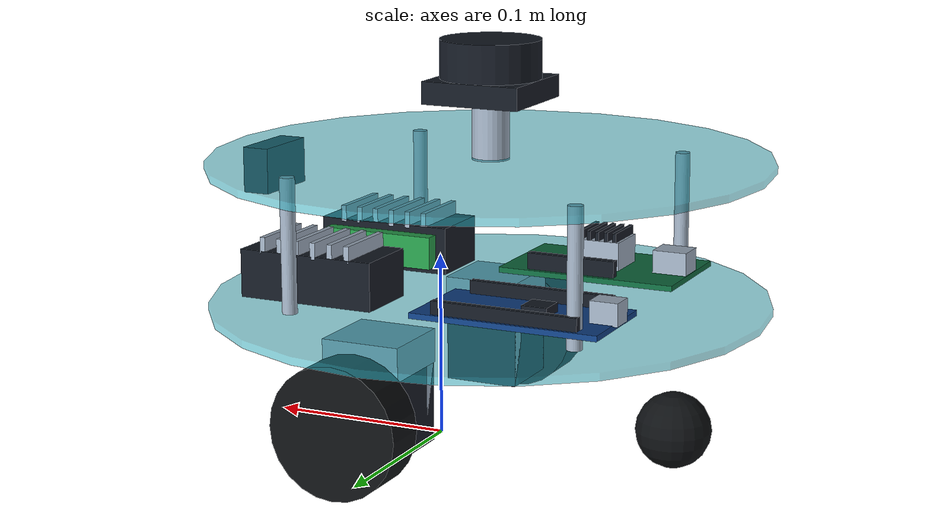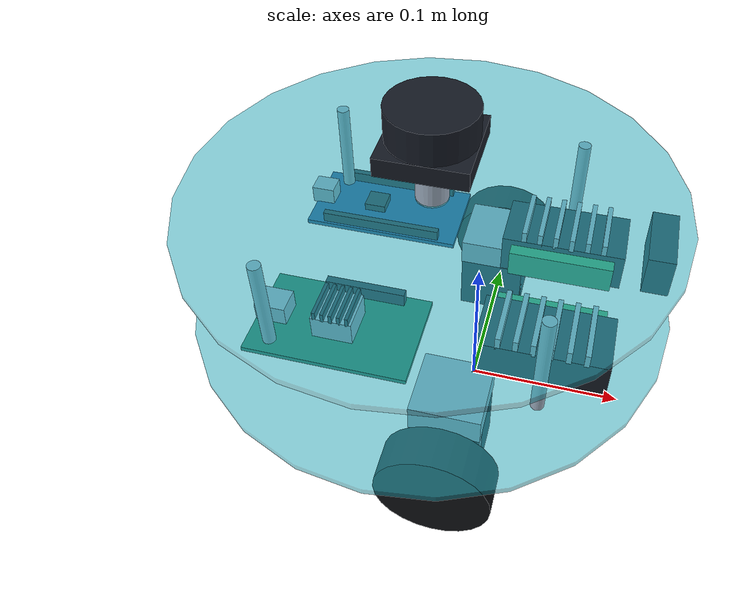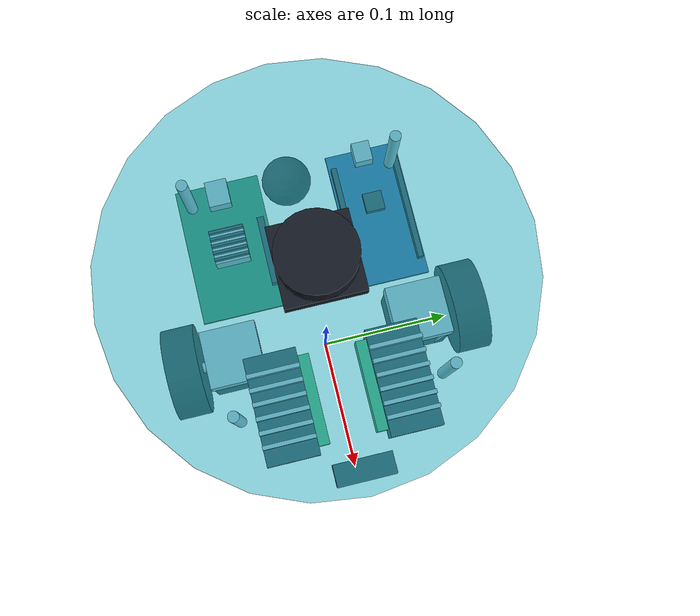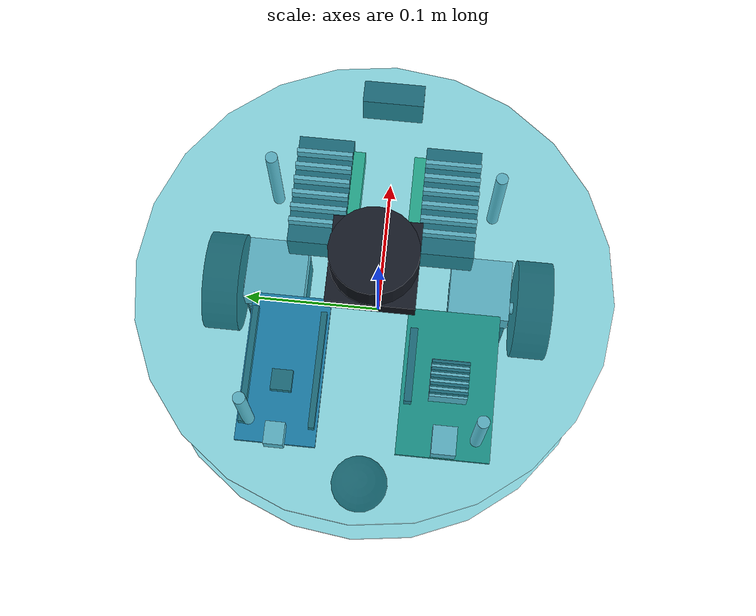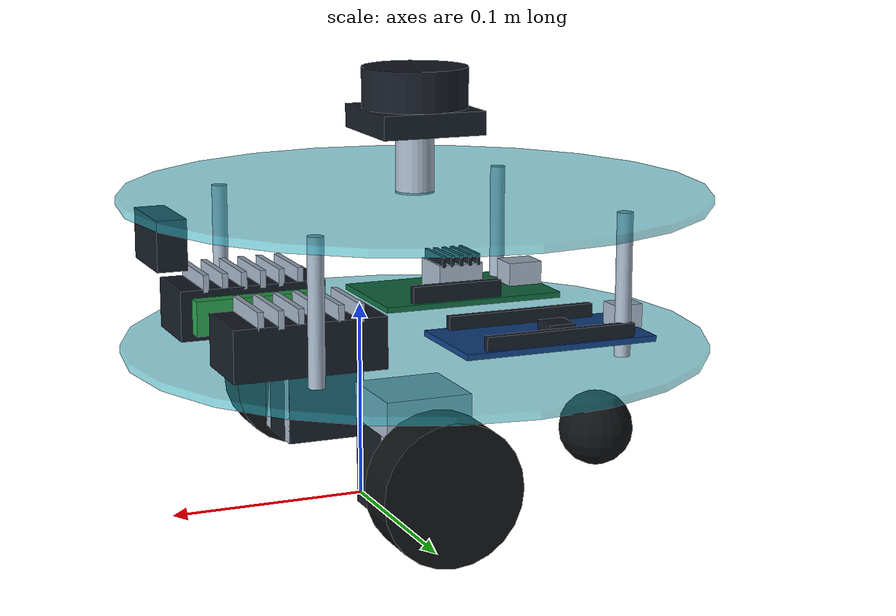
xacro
<robot xmlns:xacro="http://www.ros.org/wiki/xacro" name="vacuum">
  <xacro:arg name="controllers_file" default="$(find vacuum_sim)/config/controllers.yaml" />
  <xacro:arg name="camera_width" default="320" />
  <xacro:arg name="camera_height" default="240" />
  <xacro:arg name="camera_rate" default="60" />
  <xacro:property name="wheel_radius" value="0.035" />
  <xacro:property name="wheel_separation" value="0.22" />
  <xacro:property name="wheel_width" value="0.025" />
  <xacro:property name="body_x" value="0.30" />
  <xacro:property name="body_y" value="0.25" />
  <xacro:property name="body_z" value="0.08" />
  <xacro:property name="body_mass" value="3.0" />
  <material name="acrylic">
    <color rgba=".17 .70 .77 .55" />
  </material>
  <material name="rubber">
    <color rgba=".055 .065 .075 1" />
  </material>
  <material name="sensor">
    <color rgba=".08 .10 .14 1" />
  </material>
  <link name="base_footprint" />
  <joint name="base_joint" type="fixed">
    <parent link="base_footprint" />
    <child link="base_link" />
    <origin xyz="-0.03 0 0.116" />
  </joint>
  <link name="base_link">
    <inertial>
      <mass value="${body_mass}" />
      <inertia ixx="${body_mass*(3*0.15**2+body_z**2)/12}" iyy="${body_mass*(3*0.15**2+body_z**2)/12}" izz="${body_mass*0.15**2/2}" ixy="0" ixz="0" iyz="0" />
    </inertial>
    <collision>
      <geometry>
        <cylinder radius="0.15" length="${body_z}" />
      </geometry>
    </collision>
    <visual name="lower_acrylic_chassis">
      <origin xyz="0 0 -0.038" />
      <geometry>
        <cylinder radius="0.15" length="0.004" />
      </geometry>
      <material name="acrylic" />
    </visual>
    <visual name="upper_acrylic_chassis">
      <origin xyz="0 0 0.038" />
      <geometry>
        <cylinder radius="0.15" length="0.004" />
      </geometry>
      <material name="acrylic" />
    </visual>
    <visual name="standoff_-0.08_-0.075">
      <origin xyz="-0.08 -0.075 0" />
      <geometry>
        <cylinder radius="0.004" length="0.072" />
      </geometry>
      <material name="aluminium" />
    </visual>
    <visual name="standoff_-0.08_0.075">
      <origin xyz="-0.08 0.075 0" />
      <geometry>
        <cylinder radius="0.004" length="0.072" />
      </geometry>
      <material name="aluminium" />
    </visual>
    <visual name="standoff_0.08_-0.075">
      <origin xyz="0.08 -0.075 0" />
      <geometry>
        <cylinder radius="0.004" length="0.072" />
      </geometry>
      <material name="aluminium" />
    </visual>
    <visual name="standoff_0.08_0.075">
      <origin xyz="0.08 0.075 0" />
      <geometry>
        <cylinder radius="0.004" length="0.072" />
      </geometry>
      <material name="aluminium" />
    </visual>
  </link>
  <xacro:macro name="wheel" params="side sign">
    <link name="${side}_wheel">
      <inertial>
        <mass value="0.12" />
        <inertia ixx="${0.12*(3*wheel_radius**2+wheel_width**2)/12}" iyy="${0.12*wheel_radius**2/2}" izz="${0.12*(3*wheel_radius**2+wheel_width**2)/12}" ixy="0" ixz="0" iyz="0" />
      </inertial>
      <visual>
        <origin rpy="${pi/2} 0 0" />
        <geometry>
          <cylinder radius="${wheel_radius}" length="${wheel_width}" />
        </geometry>
        <material name="rubber" />
      </visual>
      <collision>
        <origin rpy="${pi/2} 0 0" />
        <geometry>
          <cylinder radius="${wheel_radius}" length="${wheel_width}" />
        </geometry>
      </collision>
    </link>
    <joint name="${side}_wheel_joint" type="continuous">
      <parent link="base_link" />
      <child link="${side}_wheel" />
      <origin xyz="0.03 ${sign*wheel_separation/2} ${wheel_radius-0.116}" />
      <axis xyz="0 1 0" />
      <limit effort="3.0" velocity="70.0" />
      <dynamics damping="0.01" friction="0.0" />
    </joint>
    <gazebo reference="${side}_wheel">
      <mu1>1.0</mu1>
      <mu2>1.0</mu2>
    </gazebo>
  </xacro:macro>
  <xacro:wheel side="left" sign="1" />
  <xacro:wheel side="right" sign="-1" />
  <joint name="caster_joint" type="fixed">
    <parent link="base_link" />
    <child link="caster" />
    <origin xyz="-0.105 0 -0.096" />
  </joint>
  <link name="caster">
    <inertial>
      <mass value="0.08" />
      <inertia ixx="0.0000128" iyy="0.0000128" izz="0.0000128" ixy="0" ixz="0" iyz="0" />
    </inertial>
    <visual>
      <geometry>
        <sphere radius="0.02" />
      </geometry>
      <material name="rubber" />
    </visual>
    <collision>
      <geometry>
        <sphere radius="0.02" />
      </geometry>
    </collision>
  </link>
  <gazebo reference="caster_joint">
    <preserveFixedJoint>true</preserveFixedJoint>
  </gazebo>
  <gazebo reference="caster">
    <mu1>0.01</mu1>
    <mu2>0.01</mu2>
  </gazebo>
  <joint name="lidar_joint" type="fixed">
    <parent link="base_link" />
    <child link="lidar_link" />
    <origin xyz="0 0 0.085" />
  </joint>
  <link name="lidar_link">
    <inertial>
      <mass value="0.05" />
      <inertia ixx="0.00001" iyy="0.00001" izz="0.00002" ixy="0" ixz="0" iyz="0" />
    </inertial>
    <collision>
      <geometry>
        <cylinder radius="0.03" length="0.025" />
      </geometry>
    </collision>
    <visual name="rplidar_mount_standoff">
      <origin xyz="0 0 -0.03" />
      <geometry>
        <cylinder radius="0.01" length="0.032" />
      </geometry>
      <material name="aluminium" />
    </visual>
    <visual name="rplidar_c1_base">
      <origin xyz="0 0 -0.009" />
      <geometry>
        <box size="0.054 0.054 0.012" />
      </geometry>
      <material name="sensor" />
    </visual>
    <visual name="rplidar_c1_scanner">
      <origin xyz="0 0 0.005" />
      <geometry>
        <cylinder radius="0.027" length="0.025" />
      </geometry>
      <material name="sensor" />
    </visual>
    <visual name="rplidar_c1_accent">
      <origin xyz="0 0 0.015" />
      <geometry>
        <cylinder radius="0.025" length="0.004" />
      </geometry>
      <material name="copper" />
    </visual>
  </link>
  <gazebo reference="lidar_joint">
    <preserveFixedJoint>true</preserveFixedJoint>
  </gazebo>
  <gazebo reference="lidar_link">
    <sensor name="lidar" type="gpu_lidar">
      <topic>/scan</topic>
      <gz_frame_id>lidar_link</gz_frame_id>
      <update_rate>10.0</update_rate>
      <always_on>true</always_on>
      <lidar>
        <scan>
          <horizontal>
            <samples>500</samples>
            <resolution>1</resolution>
            <min_angle>${-pi}</min_angle>
            <max_angle>${pi}</max_angle>
          </horizontal>
        </scan>
        <range>
          <min>0.05</min>
          <max>12.0</max>
          <resolution>0.01</resolution>
        </range>
        <noise>
          <type>gaussian</type>
          <mean>0</mean>
          <stddev>0.015</stddev>
        </noise>
      </lidar>
    </sensor>
  </gazebo>
  <joint name="camera_joint" type="fixed">
    <parent link="base_link" />
    <child link="camera_link" />
    <origin xyz="0.1325 0 0.025" />
  </joint>
  <link name="camera_link">
    <inertial>
      <mass value="0.03" />
      <inertia ixx="0.000004" iyy="0.000004" izz="0.000004" ixy="0" ixz="0" iyz="0" />
    </inertial>
    <visual>
      <geometry>
        <box size="0.015 0.04 0.025" />
      </geometry>
      <material name="sensor" />
    </visual>
  </link>
  <joint name="camera_optical_joint" type="fixed">
    <parent link="camera_link" />
    <child link="camera_optical_frame" />
    <origin rpy="${-pi/2} 0 ${-pi/2}" />
  </joint>
  <link name="camera_optical_frame" />
  <gazebo reference="camera_joint">
    <preserveFixedJoint>true</preserveFixedJoint>
  </gazebo>
  <gazebo reference="camera_link">
    <sensor name="camera" type="camera">
      <topic>/camera/image_raw</topic>
      <gz_frame_id>camera_optical_frame</gz_frame_id>
      <update_rate>$(arg camera_rate)</update_rate>
      <always_on>true</always_on>
      <camera>
        <horizontal_fov>1.0472</horizontal_fov>
        <image>
          <width>$(arg camera_width)</width>
          <height>$(arg camera_height)</height>
          <format>R8G8B8</format>
        </image>
        <clip>
          <near>0.03</near>
          <far>15</far>
        </clip>
        <camera_info_topic>/camera/camera_info</camera_info_topic>
      </camera>
    </sensor>
  </gazebo>
  <ros2_control name="VacuumSimulation" type="system">
    <hardware>
      <plugin>gz_ros2_control/GazeboSimSystem</plugin>
    </hardware>
    <joint name="left_wheel_joint">
      <command_interface name="velocity" />
      <state_interface name="position" />
      <state_interface name="velocity" />
    </joint>
    <joint name="right_wheel_joint">
      <command_interface name="velocity" />
      <state_interface name="position" />
      <state_interface name="velocity" />
    </joint>
  </ros2_control>
  <gazebo>
    <plugin filename="libgz_ros2_control-system.so" name="gz_ros2_control::GazeboSimROS2ControlPlugin">
      <parameters>$(arg controllers_file)</parameters>
      <ros>
        <remapping>/diff_drive_controller/odom:=/odom</remapping>
      </ros>
    </plugin>
  </gazebo>
  <material name="aluminium">
    <color rgba=".62 .68 .75 1" />
  </material>
  <material name="pcb">
    <color rgba=".06 .42 .25 1" />
  </material>
  <material name="pcb_blue">
    <color rgba=".06 .25 .52 1" />
  </material>
  <material name="copper">
    <color rgba=".95 .58 .18 1" />
  </material>
  <material name="terminal">
    <color rgba=".15 .61 .29 1" />
  </material>
  <joint name="left_nema17_mount" type="fixed">
    <parent link="base_link" />
    <child link="left_nema17" />
    <origin xyz="0.03 0.071 -0.081" />
  </joint>
  <link name="left_nema17">
    <inertial>
      <mass value="0.25" />
      <inertia ixx="7.061020833333332e-05" iyy="7.455374999999999e-05" izz="7.061020833333332e-05" ixy="0" ixz="0" iyz="0" />
    </inertial>
    <visual name="left_nema17_body">
      <origin xyz="0 0 0" />
      <geometry>
        <box size="0.0423 0.04 0.0423" />
      </geometry>
      <material name="sensor" />
    </visual>
    <visual name="endplate_-0.016">
      <origin xyz="0 -0.016 0" />
      <geometry>
        <box size="0.0423 0.008 0.0423" />
      </geometry>
      <material name="aluminium" />
    </visual>
    <visual name="endplate_0.016">
      <origin xyz="0 0.016 0" />
      <geometry>
        <box size="0.0423 0.008 0.0423" />
      </geometry>
      <material name="aluminium" />
    </visual>
    <visual name="shaft_and_hub">
      <origin xyz="0 0.031 0" rpy="${pi/2} 0 0" />
      <geometry>
        <cylinder radius="0.004" length="0.023" />
      </geometry>
      <material name="aluminium" />
    </visual>
    <visual name="under_chassis_mount">
      <origin xyz="0 0 0.03" />
      <geometry>
        <box size="0.043 0.042 0.018" />
      </geometry>
      <material name="aluminium" />
    </visual>
  </link>
  <joint name="left_tb6600_mount" type="fixed">
    <parent link="base_link" />
    <child link="left_tb6600" />
    <origin xyz="0.078 0.044 -0.021" />
  </joint>
  <link name="left_tb6600">
    <inertial>
      <mass value="0.1" />
      <inertia ixx="1.7666666666666668e-05" iyy="5.504166666666667e-05" izz="6.144166666666668e-05" ixy="0" ixz="0" iyz="0" />
    </inertial>
    <visual name="left_tb6600_body">
      <origin xyz="0 0 0" />
      <geometry>
        <box size="0.077 0.038 0.026" />
      </geometry>
      <material name="sensor" />
    </visual>
    <visual name="cooling_fin_-0.025">
      <origin xyz="-0.025 0 0.016" />
      <geometry>
        <box size="0.003 0.038 0.009" />
      </geometry>
      <material name="aluminium" />
    </visual>
    <visual name="cooling_fin_-0.015">
      <origin xyz="-0.015 0 0.016" />
      <geometry>
        <box size="0.003 0.038 0.009" />
      </geometry>
      <material name="aluminium" />
    </visual>
    <visual name="cooling_fin_-0.005">
      <origin xyz="-0.005 0 0.016" />
      <geometry>
        <box size="0.003 0.038 0.009" />
      </geometry>
      <material name="aluminium" />
    </visual>
    <visual name="cooling_fin_0.005">
      <origin xyz="0.005 0 0.016" />
      <geometry>
        <box size="0.003 0.038 0.009" />
      </geometry>
      <material name="aluminium" />
    </visual>
    <visual name="cooling_fin_0.015">
      <origin xyz="0.015 0 0.016" />
      <geometry>
        <box size="0.003 0.038 0.009" />
      </geometry>
      <material name="aluminium" />
    </visual>
    <visual name="cooling_fin_0.025">
      <origin xyz="0.025 0 0.016" />
      <geometry>
        <box size="0.003 0.038 0.009" />
      </geometry>
      <material name="aluminium" />
    </visual>
    <visual name="screw_terminals">
      <origin xyz="0 -0.022 0" />
      <geometry>
        <box size="0.065 0.01 0.018" />
      </geometry>
      <material name="terminal" />
    </visual>
  </link>
  <joint name="right_nema17_mount" type="fixed">
    <parent link="base_link" />
    <child link="right_nema17" />
    <origin xyz="0.03 -0.071 -0.081" />
  </joint>
  <link name="right_nema17">
    <inertial>
      <mass value="0.25" />
      <inertia ixx="7.061020833333332e-05" iyy="7.455374999999999e-05" izz="7.061020833333332e-05" ixy="0" ixz="0" iyz="0" />
    </inertial>
    <visual name="right_nema17_body">
      <origin xyz="0 0 0" />
      <geometry>
        <box size="0.0423 0.04 0.0423" />
      </geometry>
      <material name="sensor" />
    </visual>
    <visual name="endplate_-0.016">
      <origin xyz="0 -0.016 0" />
      <geometry>
        <box size="0.0423 0.008 0.0423" />
      </geometry>
      <material name="aluminium" />
    </visual>
    <visual name="endplate_0.016">
      <origin xyz="0 0.016 0" />
      <geometry>
        <box size="0.0423 0.008 0.0423" />
      </geometry>
      <material name="aluminium" />
    </visual>
    <visual name="shaft_and_hub">
      <origin xyz="0 -0.031 0" rpy="${pi/2} 0 0" />
      <geometry>
        <cylinder radius="0.004" length="0.023" />
      </geometry>
      <material name="aluminium" />
    </visual>
    <visual name="under_chassis_mount">
      <origin xyz="0 0 0.03" />
      <geometry>
        <box size="0.043 0.042 0.018" />
      </geometry>
      <material name="aluminium" />
    </visual>
  </link>
  <joint name="right_tb6600_mount" type="fixed">
    <parent link="base_link" />
    <child link="right_tb6600" />
    <origin xyz="0.078 -0.044 -0.021" />
  </joint>
  <link name="right_tb6600">
    <inertial>
      <mass value="0.1" />
      <inertia ixx="1.7666666666666668e-05" iyy="5.504166666666667e-05" izz="6.144166666666668e-05" ixy="0" ixz="0" iyz="0" />
    </inertial>
    <visual name="right_tb6600_body">
      <origin xyz="0 0 0" />
      <geometry>
        <box size="0.077 0.038 0.026" />
      </geometry>
      <material name="sensor" />
    </visual>
    <visual name="cooling_fin_-0.025">
      <origin xyz="-0.025 0 0.016" />
      <geometry>
        <box size="0.003 0.038 0.009" />
      </geometry>
      <material name="aluminium" />
    </visual>
    <visual name="cooling_fin_-0.015">
      <origin xyz="-0.015 0 0.016" />
      <geometry>
        <box size="0.003 0.038 0.009" />
      </geometry>
      <material name="aluminium" />
    </visual>
    <visual name="cooling_fin_-0.005">
      <origin xyz="-0.005 0 0.016" />
      <geometry>
        <box size="0.003 0.038 0.009" />
      </geometry>
      <material name="aluminium" />
    </visual>
    <visual name="cooling_fin_0.005">
      <origin xyz="0.005 0 0.016" />
      <geometry>
        <box size="0.003 0.038 0.009" />
      </geometry>
      <material name="aluminium" />
    </visual>
    <visual name="cooling_fin_0.015">
      <origin xyz="0.015 0 0.016" />
      <geometry>
        <box size="0.003 0.038 0.009" />
      </geometry>
      <material name="aluminium" />
    </visual>
    <visual name="cooling_fin_0.025">
      <origin xyz="0.025 0 0.016" />
      <geometry>
        <box size="0.003 0.038 0.009" />
      </geometry>
      <material name="aluminium" />
    </visual>
    <visual name="screw_terminals">
      <origin xyz="0 0.022 0" />
      <geometry>
        <box size="0.065 0.01 0.018" />
      </geometry>
      <material name="terminal" />
    </visual>
  </link>
  <joint name="arduino_mega_mount" type="fixed">
    <parent link="base_link" />
    <child link="arduino_mega" />
    <origin xyz="-0.044 0.056 -0.027" />
  </joint>
  <link name="arduino_mega">
    <inertial>
      <mass value="0.037" />
      <inertia ixx="8.787160833333333e-06" iyy="3.1805540399999995e-05" izz="4.053720123333333e-05" ixy="0" ixz="0" iyz="0" />
    </inertial>
    <visual name="arduino_mega_body">
      <origin xyz="0 0 0" />
      <geometry>
        <box size="0.10152 0.0533 0.003" />
      </geometry>
      <material name="pcb_blue" />
    </visual>
    <visual name="mega_processor">
      <origin xyz="-0.009 0 0.004" />
      <geometry>
        <box size="0.014 0.014 0.005" />
      </geometry>
      <material name="sensor" />
    </visual>
    <visual name="mega_pin_headers_-0.023">
      <origin xyz="0 -0.023 0.005" />
      <geometry>
        <box size="0.079 0.004 0.007" />
      </geometry>
      <material name="sensor" />
    </visual>
    <visual name="mega_pin_headers_0.023">
      <origin xyz="0 0.023 0.005" />
      <geometry>
        <box size="0.079 0.004 0.007" />
      </geometry>
      <material name="sensor" />
    </visual>
    <visual name="mega_usb">
      <origin xyz="-0.046 0 0.007" />
      <geometry>
        <box size="0.015 0.013 0.012" />
      </geometry>
      <material name="aluminium" />
    </visual>
  </link>
  <joint name="orange_pi5_mount" type="fixed">
    <parent link="base_link" />
    <child link="orange_pi5" />
    <origin xyz="-0.044 -0.054 -0.027" />
  </joint>
  <link name="orange_pi5">
    <inertial>
      <mass value="0.046" />
      <inertia ixx="1.476983333333333e-05" iyy="3.836783333333334e-05" izz="5.3068666666666676e-05" ixy="0" ixz="0" iyz="0" />
    </inertial>
    <visual name="orange_pi5_body">
      <origin xyz="0 0 0" />
      <geometry>
        <box size="0.1 0.062 0.003" />
      </geometry>
      <material name="pcb" />
    </visual>
    <visual name="rk3588s_heatsink">
      <origin xyz="0 0 0.009" />
      <geometry>
        <box size="0.025 0.025 0.016" />
      </geometry>
      <material name="aluminium" />
    </visual>
    <visual name="heatsink_fin_-0.01">
      <origin xyz="-0.01 0 0.019" />
      <geometry>
        <box size="0.002 0.025 0.006" />
      </geometry>
      <material name="sensor" />
    </visual>
    <visual name="heatsink_fin_-0.005">
      <origin xyz="-0.005 0 0.019" />
      <geometry>
        <box size="0.002 0.025 0.006" />
      </geometry>
      <material name="sensor" />
    </visual>
    <visual name="heatsink_fin_0">
      <origin xyz="0 0 0.019" />
      <geometry>
        <box size="0.002 0.025 0.006" />
      </geometry>
      <material name="sensor" />
    </visual>
    <visual name="heatsink_fin_0.005">
      <origin xyz="0.005 0 0.019" />
      <geometry>
        <box size="0.002 0.025 0.006" />
      </geometry>
      <material name="sensor" />
    </visual>
    <visual name="heatsink_fin_0.01">
      <origin xyz="0.01 0 0.019" />
      <geometry>
        <box size="0.002 0.025 0.006" />
      </geometry>
      <material name="sensor" />
    </visual>
    <visual name="ethernet_port">
      <origin xyz="-0.04 0 0.007" />
      <geometry>
        <box size="0.019 0.016 0.014" />
      </geometry>
      <material name="aluminium" />
    </visual>
    <visual name="gpio_header">
      <origin xyz="0.009 0.026 0.006" />
      <geometry>
        <box size="0.05 0.005 0.009" />
      </geometry>
      <material name="sensor" />
    </visual>
  </link>
</robot>
